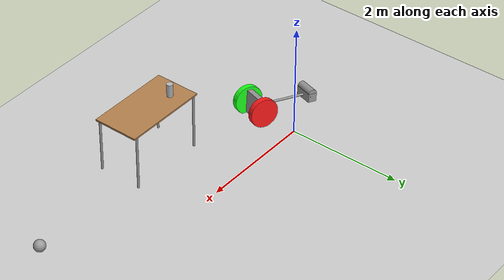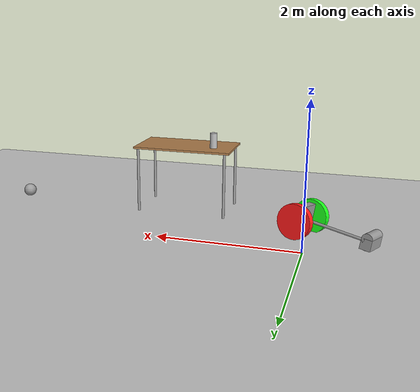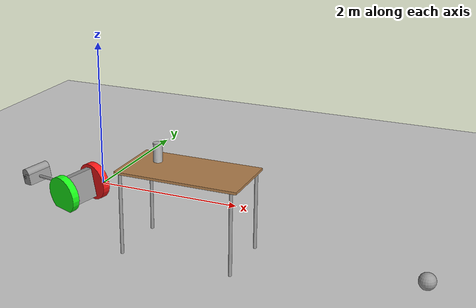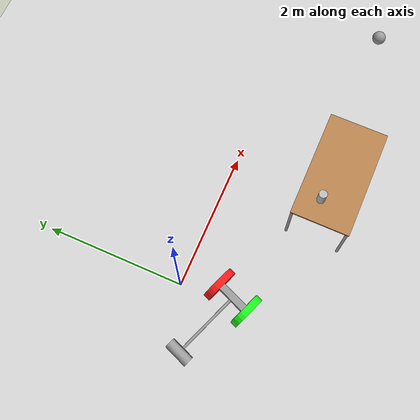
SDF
<sdf version="1.6">
 <world name="default">
  <model name="ground_plane">
   <static>1</static>
   <link name="link">
    <collision name="collision">
     <geometry><plane><normal>0 0 1</normal><size>100 100</size></plane></geometry>
     <surface><friction><ode><mu>100</mu><mu2>50</mu2></ode></friction></surface>
    </collision>
    <visual name="visual">
     <cast_shadows>0</cast_shadows>
     <geometry><plane><normal>0 0 1</normal><size>100 100</size></plane></geometry>
     <material>
      <script><uri>file://media/materials/scripts/gazebo.material</uri><name>Gazebo/Grey</name></script>
     </material>
    </visual>
   </link>
  </model>
  <model name="TwoWheelBalancer">
   <link name="link_0">
    <pose>0.012232 0 -0.27143 0 -0 0</pose>
    <inertial>
     <mass>1</mass>
     <inertia>
      <ixx>0.166667</ixx>
      <ixy>0</ixy>
      <ixz>0</ixz>
      <iyy>0.166667</iyy>
      <iyz>0</iyz>
      <izz>0.166667</izz>
     </inertia>
    </inertial>
    <visual name="visual">
     <geometry><box><size>0.4 0.4 0.1</size></box></geometry>
     <material>
      <lighting>1</lighting>
      <script><uri>file://media/materials/scripts/gazebo.material</uri><name>Gazebo/Grey</name></script>
      <shader type="pixel"><normal_map>__default__</normal_map></shader>
      <ambient>0.3 0.3 0.3 1</ambient>
      <diffuse>0.7 0.7 0.7 1</diffuse>
      <specular>0.01 0.01 0.01 1</specular>
      <emissive>0 0 0 1</emissive>
     </material>
    </visual>
    <collision name="collision">
     <geometry><box><size>0.4 0.4 0.1</size></box></geometry>
     <surface>
      <friction>
       <ode><mu>1</mu><mu2>1</mu2><fdir1>0 0 0</fdir1><slip1>0</slip1><slip2>0</slip2></ode>
       <torsional>
        <coefficient>1</coefficient>
        <patch_radius>0</patch_radius>
        <surface_radius>0</surface_radius>
        <use_patch_radius>1</use_patch_radius>
        <ode><slip>0</slip></ode>
       </torsional>
      </friction>
      <bounce><restitution_coefficient>0</restitution_coefficient><threshold>1e+06</threshold></bounce>
      <contact>
       <collide_without_contact>0</collide_without_contact>
       <collide_without_contact_bitmask>1</collide_without_contact_bitmask>
       <collide_bitmask>1</collide_bitmask>
       <ode>
        <soft_cfm>0</soft_cfm>
        <soft_erp>0.2</soft_erp>
        <kp>1e+13</kp>
        <kd>1</kd>
        <max_vel>0.01</max_vel>
        <min_depth>0</min_depth>
       </ode>
       <bullet>
        <split_impulse>1</split_impulse>
        <split_impulse_penetration_threshold>-0.01</split_impulse_penetration_threshold>
        <soft_cfm>0</soft_cfm>
        <soft_erp>0.2</soft_erp>
        <kp>1e+13</kp>
        <kd>1</kd>
       </bullet>
      </contact>
     </surface>
    </collision>
   </link>
   <link name="link_1">
    <pose>0.012232 0.250024 -0.27143 0 -0 0</pose>
    <inertial>
     <mass>1</mass>
     <inertia><ixx>0.145833</ixx><ixy>0</ixy><ixz>0</ixz><iyy>0.145833</iyy><iyz>0</iyz><izz>0.125</izz></inertia>
    </inertial>
    <visual name="visual">
     <pose>0 0 0 1.5707 -0 0</pose>
     <geometry><cylinder><radius>0.25</radius><length>0.1</length></cylinder></geometry>
     <material>
      <lighting>1</lighting>
      <script><uri>file://media/materials/scripts/gazebo.material</uri><name>Gazebo/Grey</name></script>
      <shader type="pixel"><normal_map>__default__</normal_map></shader>
      <ambient>0.1 1 0.1 1</ambient>
      <diffuse>0.1 1 0.1 1</diffuse>
      <specular>0.01 0.01 0.01 1</specular>
      <emissive>0 0 0 1</emissive>
     </material>
    </visual>
    <collision name="collision">
     <pose>0 0 0 1.5707 -0 0</pose>
     <geometry><cylinder><radius>0.25</radius><length>0.1</length></cylinder></geometry>
     <surface>
      <friction>
       <ode><mu>1</mu><mu2>1</mu2><fdir1>0 0 0</fdir1><slip1>0</slip1><slip2>0</slip2></ode>
       <torsional>
        <coefficient>1</coefficient>
        <patch_radius>0</patch_radius>
        <surface_radius>0</surface_radius>
        <use_patch_radius>1</use_patch_radius>
        <ode><slip>0</slip></ode>
       </torsional>
      </friction>
      <bounce><restitution_coefficient>0</restitution_coefficient><threshold>1e+06</threshold></bounce>
      <contact>
       <collide_without_contact>0</collide_without_contact>
       <collide_without_contact_bitmask>1</collide_without_contact_bitmask>
       <collide_bitmask>1</collide_bitmask>
       <ode>
        <soft_cfm>0</soft_cfm>
        <soft_erp>0.2</soft_erp>
        <kp>1e+13</kp>
        <kd>1</kd>
        <max_vel>0.01</max_vel>
        <min_depth>0</min_depth>
       </ode>
       <bullet>
        <split_impulse>1</split_impulse>
        <split_impulse_penetration_threshold>-0.01</split_impulse_penetration_threshold>
        <soft_cfm>0</soft_cfm>
        <soft_erp>0.2</soft_erp>
        <kp>1e+13</kp>
        <kd>1</kd>
       </bullet>
      </contact>
     </surface>
    </collision>
   </link>
   <link name="link_1_clone">
    <pose>0.012232 -0.250024 -0.27143 0 -0 0</pose>
    <inertial>
     <mass>1</mass>
     <inertia><ixx>0.145833</ixx><ixy>0</ixy><ixz>0</ixz><iyy>0.145833</iyy><iyz>0</iyz><izz>0.125</izz></inertia>
    </inertial>
    <visual name="visual">
     <pose>0 0 0 1.5707 -0 0</pose>
     <geometry><cylinder><radius>0.25</radius><length>0.1</length></cylinder></geometry>
     <material>
      <lighting>1</lighting>
      <script><uri>file://media/materials/scripts/gazebo.material</uri><name>Gazebo/Grey</name></script>
      <shader type="pixel"><normal_map>__default__</normal_map></shader>
      <ambient>1 0.1 0.1 1</ambient>
      <diffuse>1 0.1 0.1 1</diffuse>
      <specular>0.01 0.01 0.01 1</specular>
      <emissive>0 0 0 1</emissive>
     </material>
    </visual>
    <collision name="collision">
     <pose>0 0 0 1.5707 -0 0</pose>
     <geometry><cylinder><radius>0.25</radius><length>0.1</length></cylinder></geometry>
     <surface>
      <friction>
       <ode><mu>1</mu><mu2>1</mu2><fdir1>0 0 0</fdir1><slip1>0</slip1><slip2>0</slip2></ode>
       <torsional>
        <coefficient>1</coefficient>
        <patch_radius>0</patch_radius>
        <surface_radius>0</surface_radius>
        <use_patch_radius>1</use_patch_radius>
        <ode><slip>0</slip></ode>
       </torsional>
      </friction>
      <bounce><restitution_coefficient>0</restitution_coefficient><threshold>1e+06</threshold></bounce>
      <contact>
       <collide_without_contact>0</collide_without_contact>
       <collide_without_contact_bitmask>1</collide_without_contact_bitmask>
       <collide_bitmask>1</collide_bitmask>
       <ode>
        <soft_cfm>0</soft_cfm>
        <soft_erp>0.2</soft_erp>
        <kp>1e+13</kp>
        <kd>1</kd>
        <max_vel>0.01</max_vel>
        <min_depth>0</min_depth>
       </ode>
       <bullet>
        <split_impulse>1</split_impulse>
        <split_impulse_penetration_threshold>-0.01</split_impulse_penetration_threshold>
        <soft_cfm>0</soft_cfm>
        <soft_erp>0.2</soft_erp>
        <kp>1e+13</kp>
        <kd>1</kd>
       </bullet>
      </contact>
     </surface>
    </collision>
   </link>
   <link name="link_2">
    <pose>0.012232 0 -0.27143 0 -0 0</pose>
    <inertial>
     <mass>1</mass>
     <inertia><ixx>0.145833</ixx><ixy>0</ixy><ixz>0</ixz><iyy>0.145833</iyy><iyz>0</iyz><izz>0.125</izz></inertia>
    </inertial>
    <visual name="visual">
     <pose>0 0 0.5 0 -0 0</pose>
     <geometry><cylinder><radius>0.02</radius><length>1</length></cylinder></geometry>
     <material>
      <lighting>1</lighting>
      <script><uri>file://media/materials/scripts/gazebo.material</uri><name>Gazebo/Grey</name></script>
      <shader type="pixel"><normal_map>__default__</normal_map></shader>
      <ambient>0.3 0.3 0.3 1</ambient>
      <diffuse>0.7 0.7 0.7 1</diffuse>
      <specular>0.01 0.01 0.01 1</specular>
      <emissive>0 0 0 1</emissive>
     </material>
    </visual>
    <collision name="collision">
     <pose>0 0 0.5 0 -0 0</pose>
     <geometry><cylinder><radius>0.02</radius><length>1</length></cylinder></geometry>
     <surface>
      <friction>
       <ode><mu>1</mu><mu2>1</mu2><fdir1>0 0 0</fdir1><slip1>0</slip1><slip2>0</slip2></ode>
       <torsional>
        <coefficient>1</coefficient>
        <patch_radius>0</patch_radius>
        <surface_radius>0</surface_radius>
        <use_patch_radius>1</use_patch_radius>
        <ode><slip>0</slip></ode>
       </torsional>
      </friction>
      <bounce><restitution_coefficient>0</restitution_coefficient><threshold>1e+06</threshold></bounce>
      <contact>
       <collide_without_contact>0</collide_without_contact>
       <collide_without_contact_bitmask>1</collide_without_contact_bitmask>
       <collide_bitmask>1</collide_bitmask>
       <ode>
        <soft_cfm>0</soft_cfm>
        <soft_erp>0.2</soft_erp>
        <kp>1e+13</kp>
        <kd>1</kd>
        <max_vel>0.01</max_vel>
        <min_depth>0</min_depth>
       </ode>
       <bullet>
        <split_impulse>1</split_impulse>
        <split_impulse_penetration_threshold>-0.01</split_impulse_penetration_threshold>
        <soft_cfm>0</soft_cfm>
        <soft_erp>0.2</soft_erp>
        <kp>1e+13</kp>
        <kd>1</kd>
       </bullet>
      </contact>
     </surface>
    </collision>
   </link>
   <link name="link_3">
    <pose>0.012232 0 0.728572 0 -0 0</pose>
    <inertial>
     <mass>1</mass>
     <inertia>
      <ixx>0.166667</ixx>
      <ixy>0</ixy>
      <ixz>0</ixz>
      <iyy>0.166667</iyy>
      <iyz>0</iyz>
      <izz>0.166667</izz>
     </inertia>
    </inertial>
    <visual name="visual">
     <geometry><box><size>0.15 0.35 0.15</size></box></geometry>
     <material>
      <lighting>1</lighting>
      <script><uri>file://media/materials/scripts/gazebo.material</uri><name>Gazebo/Grey</name></script>
      <shader type="pixel"><normal_map>__default__</normal_map></shader>
      <ambient>0.3 0.3 0.3 1</ambient>
      <diffuse>0.7 0.7 0.7 1</diffuse>
      <specular>0.01 0.01 0.01 1</specular>
      <emissive>0 0 0 1</emissive>
     </material>
    </visual>
    <collision name="collision">
     <geometry><box><size>0.15 0.35 0.15</size></box></geometry>
     <surface>
      <friction>
       <ode><mu>1</mu><mu2>1</mu2><fdir1>0 0 0</fdir1><slip1>0</slip1><slip2>0</slip2></ode>
       <torsional>
        <coefficient>1</coefficient>
        <patch_radius>0</patch_radius>
        <surface_radius>0</surface_radius>
        <use_patch_radius>1</use_patch_radius>
        <ode><slip>0</slip></ode>
       </torsional>
      </friction>
      <bounce><restitution_coefficient>0</restitution_coefficient><threshold>1e+06</threshold></bounce>
      <contact>
       <collide_without_contact>0</collide_without_contact>
       <collide_without_contact_bitmask>1</collide_without_contact_bitmask>
       <collide_bitmask>1</collide_bitmask>
       <ode>
        <soft_cfm>0</soft_cfm>
        <soft_erp>0.2</soft_erp>
        <kp>1e+13</kp>
        <kd>1</kd>
        <max_vel>0.01</max_vel>
        <min_depth>0</min_depth>
       </ode>
       <bullet>
        <split_impulse>1</split_impulse>
        <split_impulse_penetration_threshold>-0.01</split_impulse_penetration_threshold>
        <soft_cfm>0</soft_cfm>
        <soft_erp>0.2</soft_erp>
        <kp>1e+13</kp>
        <kd>1</kd>
       </bullet>
      </contact>
     </surface>
    </collision>
   </link>
   <link name="link_5">
    <pose>0.092232 -0.12 0.728571 0 -0 0</pose>
    <inertial>
     <mass>1</mass>
     <inertia><ixx>0.145833</ixx><ixy>0</ixy><ixz>0</ixz><iyy>0.145833</iyy><iyz>0</iyz><izz>0.125</izz></inertia>
    </inertial>
    <visual name="visual">
     <pose>0 0 0 0 1.5707 0</pose>
     <geometry><cylinder><radius>0.025</radius><length>0.02</length></cylinder></geometry>
     <material>
      <lighting>1</lighting>
      <script><uri>file://media/materials/scripts/gazebo.material</uri><name>Gazebo/Grey</name></script>
      <shader type="pixel"><normal_map>__default__</normal_map></shader>
      <ambient>0 0 0 1</ambient>
      <diffuse>0 0 0 1</diffuse>
      <specular>0.01 0.01 0.01 1</specular>
      <emissive>0 0 0 1</emissive>
     </material>
    </visual>
    <collision name="collision">
     <geometry><cylinder><radius>0.025</radius><length>0.02</length></cylinder></geometry>
     <surface>
      <friction>
       <ode><mu>1</mu><mu2>1</mu2><fdir1>0 0 0</fdir1><slip1>0</slip1><slip2>0</slip2></ode>
       <torsional>
        <coefficient>1</coefficient>
        <patch_radius>0</patch_radius>
        <surface_radius>0</surface_radius>
        <use_patch_radius>1</use_patch_radius>
        <ode><slip>0</slip></ode>
       </torsional>
      </friction>
      <bounce><restitution_coefficient>0</restitution_coefficient><threshold>1e+06</threshold></bounce>
      <contact>
       <collide_without_contact>0</collide_without_contact>
       <collide_without_contact_bitmask>1</collide_without_contact_bitmask>
       <collide_bitmask>1</collide_bitmask>
       <ode>
        <soft_cfm>0</soft_cfm>
        <soft_erp>0.2</soft_erp>
        <kp>1e+13</kp>
        <kd>1</kd>
        <max_vel>0.01</max_vel>
        <min_depth>0</min_depth>
       </ode>
       <bullet>
        <split_impulse>1</split_impulse>
        <split_impulse_penetration_threshold>-0.01</split_impulse_penetration_threshold>
        <soft_cfm>0</soft_cfm>
        <soft_erp>0.2</soft_erp>
        <kp>1e+13</kp>
        <kd>1</kd>
       </bullet>
      </contact>
     </surface>
    </collision>
   </link>
   <link name="link_5_clone">
    <pose>0.092232 0.12 0.728571 0 -0 0</pose>
    <inertial>
     <mass>1</mass>
     <inertia><ixx>0.145833</ixx><ixy>0</ixy><ixz>0</ixz><iyy>0.145833</iyy><iyz>0</iyz><izz>0.125</izz></inertia>
    </inertial>
    <visual name="visual">
     <pose>0 0 0 0 1.5707 0</pose>
     <geometry><cylinder><radius>0.025</radius><length>0.02</length></cylinder></geometry>
     <material>
      <lighting>1</lighting>
      <script><uri>file://media/materials/scripts/gazebo.material</uri><name>Gazebo/Grey</name></script>
      <shader type="pixel"><normal_map>__default__</normal_map></shader>
      <ambient>0 0 0 1</ambient>
      <diffuse>0 0 0 1</diffuse>
      <specular>0.01 0.01 0.01 1</specular>
      <emissive>0 0 0 1</emissive>
     </material>
    </visual>
    <collision name="collision">
     <geometry><cylinder><radius>0.025</radius><length>0.02</length></cylinder></geometry>
     <surface>
      <friction>
       <ode><mu>1</mu><mu2>1</mu2><fdir1>0 0 0</fdir1><slip1>0</slip1><slip2>0</slip2></ode>
       <torsional>
        <coefficient>1</coefficient>
        <patch_radius>0</patch_radius>
        <surface_radius>0</surface_radius>
        <use_patch_radius>1</use_patch_radius>
        <ode><slip>0</slip></ode>
       </torsional>
      </friction>
      <bounce><restitution_coefficient>0</restitution_coefficient><threshold>1e+06</threshold></bounce>
      <contact>
       <collide_without_contact>0</collide_without_contact>
       <collide_without_contact_bitmask>1</collide_without_contact_bitmask>
       <collide_bitmask>1</collide_bitmask>
       <ode>
        <soft_cfm>0</soft_cfm>
        <soft_erp>0.2</soft_erp>
        <kp>1e+13</kp>
        <kd>1</kd>
        <max_vel>0.01</max_vel>
        <min_depth>0</min_depth>
       </ode>
       <bullet>
        <split_impulse>1</split_impulse>
        <split_impulse_penetration_threshold>-0.01</split_impulse_penetration_threshold>
        <soft_cfm>0</soft_cfm>
        <soft_erp>0.2</soft_erp>
        <kp>1e+13</kp>
        <kd>1</kd>
       </bullet>
      </contact>
     </surface>
    </collision>
   </link>
   <link name="link_6">
    <pose>-0.062768 -0 0.728572 1.57079 -0 0</pose>
    <inertial>
     <mass>1</mass>
     <inertia><ixx>0.145833</ixx><ixy>0</ixy><ixz>0</ixz><iyy>0.145833</iyy><iyz>0</iyz><izz>0.125</izz></inertia>
    </inertial>
    <visual name="visual">
     <geometry><cylinder><radius>0.075</radius><length>0.35</length></cylinder></geometry>
     <material>
      <lighting>1</lighting>
      <script><uri>file://media/materials/scripts/gazebo.material</uri><name>Gazebo/Grey</name></script>
      <shader type="pixel"><normal_map>__default__</normal_map></shader>
      <ambient>0.3 0.3 0.3 1</ambient>
      <diffuse>0.7 0.7 0.7 1</diffuse>
      <specular>0.01 0.01 0.01 1</specular>
      <emissive>0 0 0 1</emissive>
     </material>
    </visual>
    <collision name="collision">
     <geometry><cylinder><radius>0.075</radius><length>0.35</length></cylinder></geometry>
     <surface>
      <friction>
       <ode><mu>1</mu><mu2>1</mu2><fdir1>0 0 0</fdir1><slip1>0</slip1><slip2>0</slip2></ode>
       <torsional>
        <coefficient>1</coefficient>
        <patch_radius>0</patch_radius>
        <surface_radius>0</surface_radius>
        <use_patch_radius>1</use_patch_radius>
        <ode><slip>0</slip></ode>
       </torsional>
      </friction>
      <bounce><restitution_coefficient>0</restitution_coefficient><threshold>1e+06</threshold></bounce>
      <contact>
       <collide_without_contact>0</collide_without_contact>
       <collide_without_contact_bitmask>1</collide_without_contact_bitmask>
       <collide_bitmask>1</collide_bitmask>
       <ode>
        <soft_cfm>0</soft_cfm>
        <soft_erp>0.2</soft_erp>
        <kp>1e+13</kp>
        <kd>1</kd>
        <max_vel>0.01</max_vel>
        <min_depth>0</min_depth>
       </ode>
       <bullet>
        <split_impulse>1</split_impulse>
        <split_impulse_penetration_threshold>-0.01</split_impulse_penetration_threshold>
        <soft_cfm>0</soft_cfm>
        <soft_erp>0.2</soft_erp>
        <kp>1e+13</kp>
        <kd>1</kd>
       </bullet>
      </contact>
     </surface>
    </collision>
   </link>
   <joint name="link_0_JOINT_0" type="revolute">
    <parent>link_0</parent>
    <child>link_1</child>
    <axis>
     <xyz>0 0 1</xyz>
     <use_parent_model_frame>0</use_parent_model_frame>
     <limit>
      <lower>-1.79769e+308</lower>
      <upper>1.79769e+308</upper>
      <effort>-1</effort>
      <velocity>-1</velocity>
     </limit>
     <dynamics>
      <spring_reference>0</spring_reference>
      <spring_stiffness>0</spring_stiffness>
      <damping>0</damping>
      <friction>0</friction>
     </dynamics>
    </axis>
    <physics>
     <ode><limit><cfm>0</cfm><erp>0.2</erp></limit><suspension><cfm>0</cfm><erp>0.2</erp></suspension></ode>
    </physics>
   </joint>
   <joint name="link_0_JOINT_1" type="revolute">
    <parent>link_0</parent>
    <child>link_1_clone</child>
    <axis>
     <xyz>0 0 1</xyz>
     <use_parent_model_frame>0</use_parent_model_frame>
     <limit>
      <lower>-1.79769e+308</lower>
      <upper>1.79769e+308</upper>
      <effort>-1</effort>
      <velocity>-1</velocity>
     </limit>
     <dynamics>
      <spring_reference>0</spring_reference>
      <spring_stiffness>0</spring_stiffness>
      <damping>0</damping>
      <friction>0</friction>
     </dynamics>
    </axis>
    <physics>
     <ode><limit><cfm>0</cfm><erp>0.2</erp></limit><suspension><cfm>0</cfm><erp>0.2</erp></suspension></ode>
    </physics>
   </joint>
   <joint name="link_0_JOINT_2" type="fixed">
    <parent>link_0</parent>
    <child>link_2</child>
    <physics>
     <ode><limit><cfm>0</cfm><erp>0.2</erp></limit><suspension><cfm>0</cfm><erp>0.2</erp></suspension></ode>
    </physics>
   </joint>
   <joint name="link_2_JOINT_3" type="revolute">
    <parent>link_2</parent>
    <child>link_3</child>
    <axis>
     <xyz>1 0 0</xyz>
     <use_parent_model_frame>0</use_parent_model_frame>
     <limit>
      <lower>-1.79769e+308</lower>
      <upper>1.79769e+308</upper>
      <effort>-1</effort>
      <velocity>-1</velocity>
     </limit>
     <dynamics>
      <spring_reference>0</spring_reference>
      <spring_stiffness>0</spring_stiffness>
      <damping>0</damping>
      <friction>0</friction>
     </dynamics>
    </axis>
    <physics>
     <ode><limit><cfm>0</cfm><erp>0.2</erp></limit><suspension><cfm>0</cfm><erp>0.2</erp></suspension></ode>
    </physics>
   </joint>
   <joint name="link_3_JOINT_4" type="fixed">
    <parent>link_3</parent>
    <child>link_5</child>
    <physics>
     <ode><limit><cfm>0</cfm><erp>0.2</erp></limit><suspension><cfm>0</cfm><erp>0.2</erp></suspension></ode>
    </physics>
   </joint>
   <joint name="link_3_JOINT_5" type="fixed">
    <parent>link_3</parent>
    <child>link_5_clone</child>
    <physics>
     <ode><limit><cfm>0</cfm><erp>0.2</erp></limit><suspension><cfm>0</cfm><erp>0.2</erp></suspension></ode>
    </physics>
   </joint>
   <joint name="link_3_JOINT_6" type="fixed">
    <parent>link_3</parent>
    <child>link_6</child>
    <physics>
     <ode><limit><cfm>0</cfm><erp>0.2</erp></limit><suspension><cfm>0</cfm><erp>0.2</erp></suspension></ode>
    </physics>
   </joint>
   <static>0</static>
   <pose>-0.171429 -0.636532 0.205917 -2.39009 1.41798 0.377986</pose>
  </model>
  <model name="table">
   <static>1</static>
   <link name="link">
    <collision name="surface">
     <pose>0 0 1 0 -0 0</pose>
     <geometry><box><size>1.5 0.8 0.03</size></box></geometry>
     <surface><friction><ode><mu>0.6</mu><mu2>0.6</mu2></ode></friction></surface>
    </collision>
    <visual name="visual1">
     <pose>0 0 1 0 -0 0</pose>
     <geometry><box><size>1.5 0.8 0.03</size></box></geometry>
     <material>
      <script><uri>file://media/materials/scripts/gazebo.material</uri><name>Gazebo/Wood</name></script>
     </material>
    </visual>
    <collision name="front_left_leg">
     <pose>0.68 0.38 0.5 0 -0 0</pose>
     <geometry><cylinder><radius>0.02</radius><length>1</length></cylinder></geometry>
    </collision>
    <visual name="front_left_leg">
     <pose>0.68 0.38 0.5 0 -0 0</pose>
     <geometry><cylinder><radius>0.02</radius><length>1</length></cylinder></geometry>
     <material>
      <script><uri>file://media/materials/scripts/gazebo.material</uri><name>Gazebo/Grey</name></script>
     </material>
    </visual>
    <collision name="front_right_leg">
     <pose>0.68 -0.38 0.5 0 -0 0</pose>
     <geometry><cylinder><radius>0.02</radius><length>1</length></cylinder></geometry>
    </collision>
    <visual name="front_right_leg">
     <pose>0.68 -0.38 0.5 0 -0 0</pose>
     <geometry><cylinder><radius>0.02</radius><length>1</length></cylinder></geometry>
     <material>
      <script><uri>file://media/materials/scripts/gazebo.material</uri><name>Gazebo/Grey</name></script>
     </material>
    </visual>
    <collision name="back_right_leg">
     <pose>-0.68 -0.38 0.5 0 -0 0</pose>
     <geometry><cylinder><radius>0.02</radius><length>1</length></cylinder></geometry>
    </collision>
    <visual name="back_right_leg">
     <pose>-0.68 -0.38 0.5 0 -0 0</pose>
     <geometry><cylinder><radius>0.02</radius><length>1</length></cylinder></geometry>
     <material>
      <script><uri>file://media/materials/scripts/gazebo.material</uri><name>Gazebo/Grey</name></script>
     </material>
    </visual>
    <collision name="back_left_leg">
     <pose>-0.68 0.38 0.5 0 -0 0</pose>
     <geometry><cylinder><radius>0.02</radius><length>1</length></cylinder></geometry>
    </collision>
    <visual name="back_left_leg">
     <pose>-0.68 0.38 0.5 0 -0 0</pose>
     <geometry><cylinder><radius>0.02</radius><length>1</length></cylinder></geometry>
     <material>
      <script><uri>file://media/materials/scripts/gazebo.material</uri><name>Gazebo/Grey</name></script>
     </material>
    </visual>
   </link>
   <pose>1.98595 -1.41293 0 0 -0 0</pose>
  </model>
  <model name="beer">
   <link name="link">
    <pose>0 0 0.115 0 -0 0</pose>
    <inertial>
     <mass>0.39</mass>
     <inertia><ixx>0.00058</ixx><ixy>0</ixy><ixz>0</ixz><iyy>0.00058</iyy><iyz>0</iyz><izz>0.00019</izz></inertia>
    </inertial>
    <collision name="collision">
     <geometry><cylinder><radius>0.055</radius><length>0.23</length></cylinder></geometry>
    </collision>
    <visual name="visual">
     <geometry><cylinder><radius>0.055</radius><length>0.23</length></cylinder></geometry>
     <material>
      <script>
       <uri>model://beer/materials/scripts</uri>
       <uri>model://beer/materials/textures</uri>
       <name>Beer/Diffuse</name>
      </script>
     </material>
    </visual>
   </link>
   <pose>1.5447 -1.31252 1.01499 1.3e-05 7e-06 0.00053</pose>
  </model>
  <model name="my_ball">
   <link name="link_0">
    <inertial>
     <mass>1</mass>
     <inertia><ixx>0.1</ixx><ixy>0</ixy><ixz>0</ixz><iyy>0.1</iyy><iyz>0</iyz><izz>0.1</izz></inertia>
    </inertial>
    <visual name="visual">
     <geometry><sphere><radius>0.1</radius></sphere></geometry>
     <material>
      <lighting>1</lighting>
      <script><uri>file://media/materials/scripts/gazebo.material</uri><name>Gazebo/Grey</name></script>
      <shader type="pixel"><normal_map>__default__</normal_map></shader>
      <ambient>1 1 1 1</ambient>
      <diffuse>1 1 1 1</diffuse>
      <specular>1 1 1 1</specular>
      <emissive>1 1 1 1</emissive>
     </material>
    </visual>
    <collision name="collision">
     <geometry><sphere><radius>0.1</radius></sphere></geometry>
     <surface>
      <friction>
       <ode><mu>1</mu><mu2>1</mu2><fdir1>0 0 0</fdir1><slip1>0</slip1><slip2>0</slip2></ode>
       <torsional>
        <coefficient>1</coefficient>
        <patch_radius>0</patch_radius>
        <surface_radius>0</surface_radius>
        <use_patch_radius>1</use_patch_radius>
        <ode><slip>0</slip></ode>
       </torsional>
      </friction>
      <bounce><restitution_coefficient>0</restitution_coefficient><threshold>1e+06</threshold></bounce>
      <contact>
       <collide_without_contact>0</collide_without_contact>
       <collide_without_contact_bitmask>1</collide_without_contact_bitmask>
       <collide_bitmask>1</collide_bitmask>
       <ode>
        <soft_cfm>0</soft_cfm>
        <soft_erp>0.2</soft_erp>
        <kp>1e+13</kp>
        <kd>1</kd>
        <max_vel>0.01</max_vel>
        <min_depth>0</min_depth>
       </ode>
       <bullet>
        <split_impulse>1</split_impulse>
        <split_impulse_penetration_threshold>-0.01</split_impulse_penetration_threshold>
        <soft_cfm>0</soft_cfm>
        <soft_erp>0.2</soft_erp>
        <kp>1e+13</kp>
        <kd>1</kd>
       </bullet>
      </contact>
     </surface>
    </collision>
   </link>
   <static>0</static>
   <pose>4.71403 -1.21152 0.1 0 -0 0</pose>
  </model>
 </world>
</sdf>
